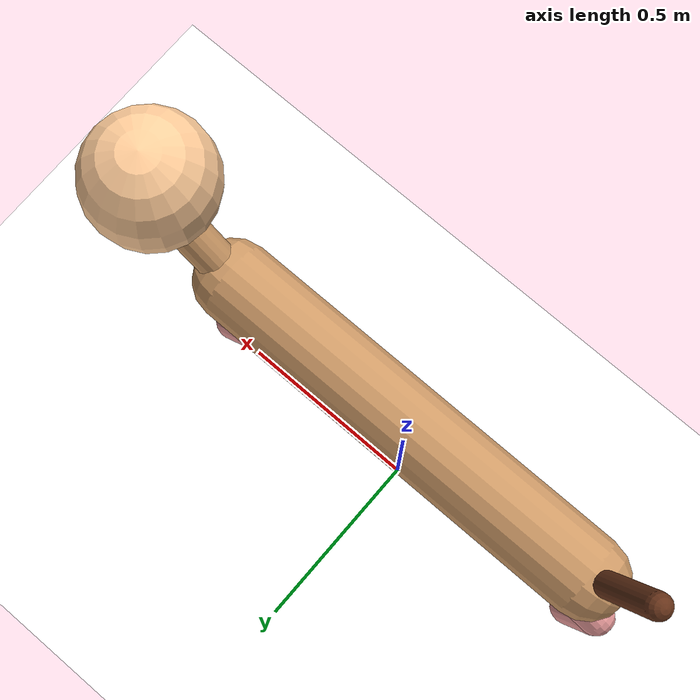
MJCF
<mujoco model="cheetah">
  <compiler angle="radian" coordinate="local" inertiafromgeom="true" settotalmass="14"/>
  <default>
    <joint armature=".1" damping=".01" limited="true" solimplimit="0 .8 .03" solreflimit=".02 1" stiffness="8"/>
    <geom conaffinity="0" condim="3" contype="1" friction=".4 .1 .1" rgba="0.8 0.6 .4 1" solimp="0.0 0.8 0.01" solref="0.02 1"/>
    <motor ctrllimited="true" ctrlrange="-1 1"/>
  </default>
  <size nstack="300000" nuser_geom="1"/>
  <option gravity="0 0 -9.81" timestep="0.01"/>
  <asset>
    <texture builtin="gradient" height="100" rgb1="0.529 0.808 0.922" rgb2="0.529 0.808 0.922" type="skybox" width="100"/>
    <texture builtin="flat" height="1278" mark="cross" markrgb="1 1 1" name="texgeom" random="0.01" rgb1="0.8 0.6 0.4" rgb2="0.8 0.6 0.4" type="cube" width="127"/>
    <texture builtin="checker" height="100" name="texplane" rgb1="0 0 0" rgb2="0.8 0.8 0.8" type="2d" width="100"/>
    <texture name="grass_tex" type="2d" file="./assets/grass2.png" />
    <material name="grass_mat" texture="grass_tex" texrepeat="2 1" rgba="1 1 1 1" specular="0" shininess="0"/>
    <material name="geom" texture="texgeom" texuniform="true"/>
    <texture name="cheetah_tex" type="2d" file="./assets/cheetah.png"/>
    <material name="cheetah_mat" texture="cheetah_tex" specular="0.3" shininess="0.5"/>
    <texture name="cheetah_tex_2" type="2d" file="./assets/cheetah_skin_2.png"/>
    <material name="cheetah_mat_2" texture="cheetah_tex_2" texrepeat="1 0.2" specular="0.3" shininess="0.5"/>
  </asset>
  <worldbody>
    <light cutoff="200" diffuse="1 1 1" dir="-0 0 -1.3" directional="true" exponent="1" pos="0 0 1.3" specular=".1 .1 .1"/>
    <geom conaffinity="1" condim="3" name="floor" type="plane" size="25 5 15" material="grass_mat" pos="0 0 0" rgba="1 1 1 1"/>
    <body name="torso" pos="0 0 .7">
      <camera name="track_test" mode="trackcom" pos="0 -3 0.3" xyaxes="1 0 0 0 0 1"/>
      <joint armature="0" axis="1 0 0" damping="0" limited="false" name="rootx" pos="0 0 0" stiffness="0" type="slide"/>
      <joint armature="0" axis="0 0 1" damping="0" limited="false" name="rootz" pos="0 0 0" stiffness="0" type="slide"/>
      <joint armature="0" axis="0 1 0" damping="0" limited="false" name="rooty" pos="0 0 0" stiffness="0" type="hinge"/>
      <geom fromto="-.5 0 0 .5 0 0" name="torso" size="0.096" type="capsule" material="cheetah_mat_2"/>
      <!-- NECK -->
      <geom axisangle="0 1 0 .87" name="head" pos=".6 0 .1" size="0.046 .15" type="capsule" material="cheetah_mat_2"/>
      <!-- CHEETAH HEAD -->
      <body name="head" pos="0.69 0 0.30">
        <geom name="head_geom" type="sphere" size="0.15" rgba="1 0.8 0.6 1" mass="0.001" material="cheetah_mat"/>
      </body>
      <!-- TAIL 🐾 -->
      <body name="tail" pos="-0.5 0 0" quat="0 -0.307 0 0.207" >
        <!-- Optional tail joint for movement -->
        <geom name="tail_geom" type="capsule" fromto="0 0 0 -0.3 0 0" size="0.03" rgba="0.4 0.2 0.1 1" material="cheetah_mat_2"/>
      </body>
      <body name="bthigh" pos="-.5 0 0">
        <joint axis="0 1 0" damping="6" name="bthigh" pos="0 0 0" range="-.52 1.05" stiffness="240" type="hinge"/>
        <geom axisangle="0 1 0 -3.8" name="bthigh" pos=".1 0 -.13" size="0.046 .145" type="capsule" material="cheetah_mat_2"/>
        <body name="bshin" pos=".16 0 -.25">
          <joint axis="0 1 0" damping="4.5" name="bshin" pos="0 0 0" range="-.785 .785" stiffness="180" type="hinge"/>
          <geom axisangle="0 1 0 -2.03" name="bshin" pos="-.14 0 -.07" rgba="0.9 0.6 0.6 1" size="0.046 .15" type="capsule" material="cheetah_mat_2"/>
          <body name="bfoot" pos="-.28 0 -.14">
            <joint axis="0 1 0" damping="3" name="bfoot" pos="0 0 0" range="-.4 .785" stiffness="120" type="hinge"/>
            <geom axisangle="0 1 0 -.27" name="bfoot" pos=".03 0 -.097" rgba="0.9 0.6 0.6 1" size="0.046 .094" type="capsule" material="cheetah_mat_2"/>
          </body>
        </body>
      </body>
      <body name="fthigh" pos=".5 0 0">
        <joint axis="0 1 0" damping="4.5" name="fthigh" pos="0 0 0" range="-1 .7" stiffness="180" type="hinge"/>
        <geom axisangle="0 1 0 .52" name="fthigh" pos="-.07 0 -.12" size="0.046 .133" type="capsule" material="cheetah_mat_2"/>
        <body name="fshin" pos="-.14 0 -.24">
          <joint axis="0 1 0" damping="3" name="fshin" pos="0 0 0" range="-1.2 .87" stiffness="120" type="hinge"/>
          <geom axisangle="0 1 0 -.6" name="fshin" pos=".065 0 -.09" rgba="0.9 0.6 0.6 1" size="0.046 .106" type="capsule" material="cheetah_mat_2"/>
          <body name="ffoot" pos=".13 0 -.18">
            <joint axis="0 1 0" damping="1.5" name="ffoot" pos="0 0 0" range="-.5 .5" stiffness="60" type="hinge"/>
            <geom axisangle="0 1 0 -.6" name="ffoot" pos=".045 0 -.07" rgba="0.9 0.6 0.6 1" size="0.046 .07" type="capsule" material="cheetah_mat_2"/>
          </body>
        </body>
      </body>
    </body>
  </worldbody>
  <actuator>
    <motor gear="120" joint="bthigh" name="bthigh"/>
    <motor gear="90" joint="bshin" name="bshin"/>
    <motor gear="60" joint="bfoot" name="bfoot"/>
    <motor gear="120" joint="fthigh" name="fthigh"/>
    <motor gear="60" joint="fshin" name="fshin"/>
    <motor gear="30" joint="ffoot" name="ffoot"/>
  </actuator>
</mujoco>
